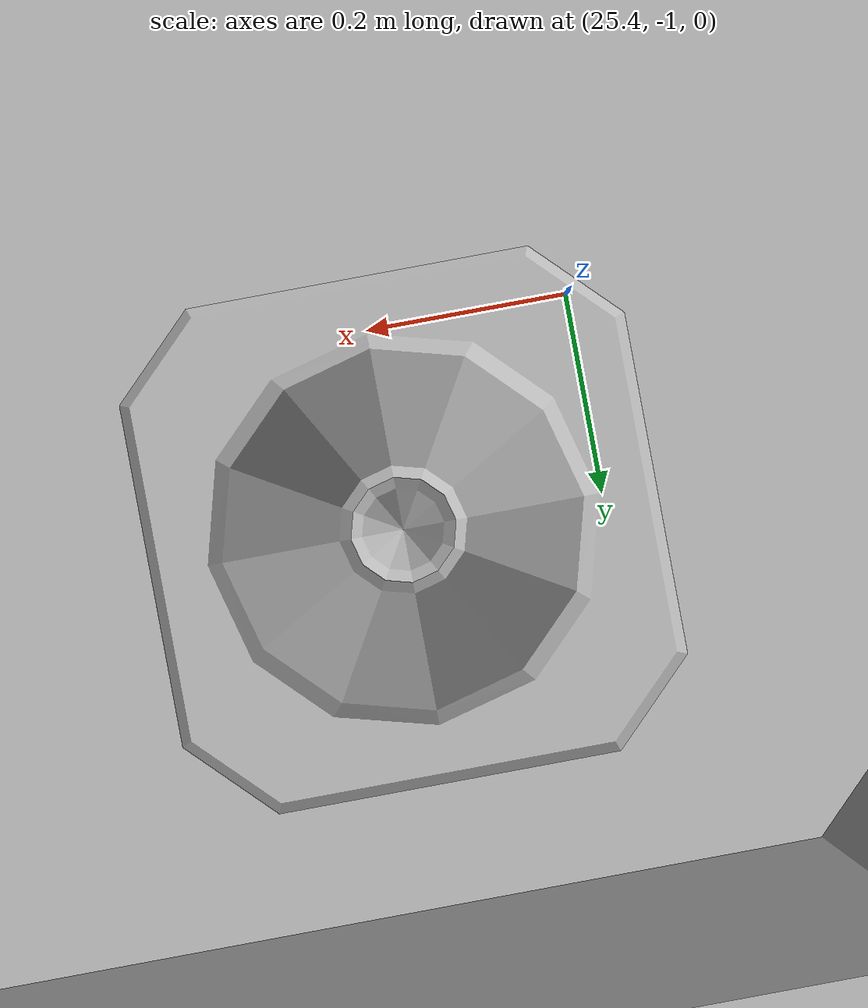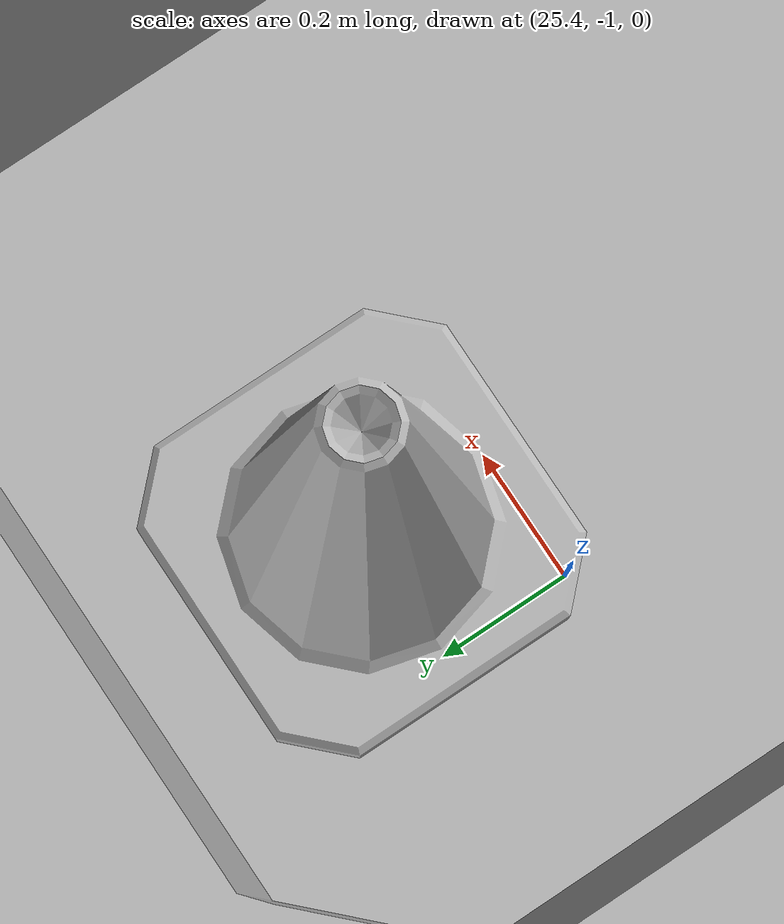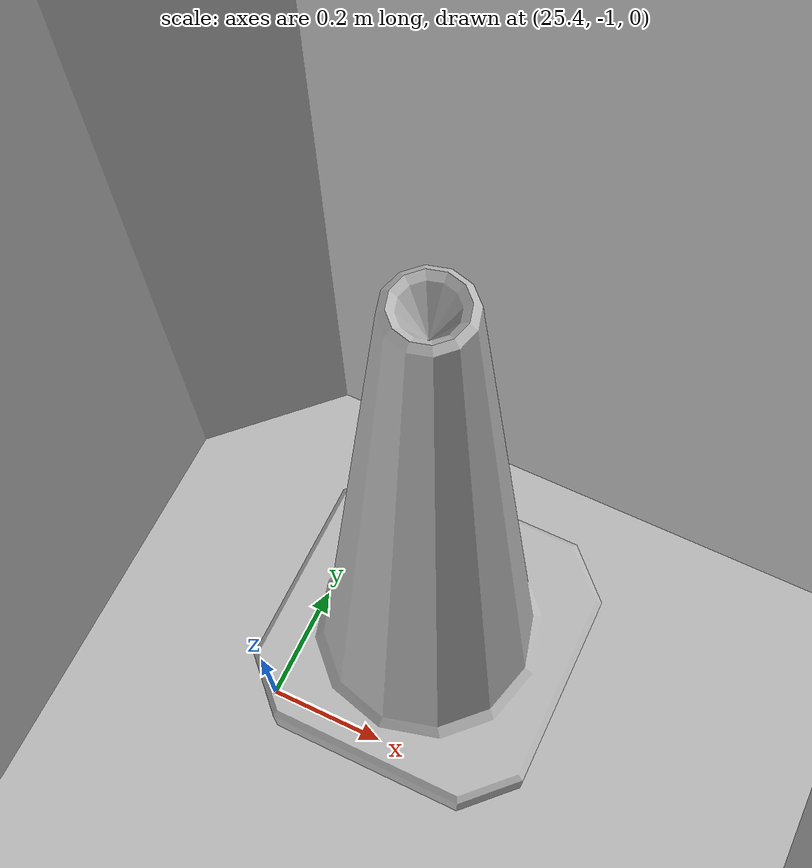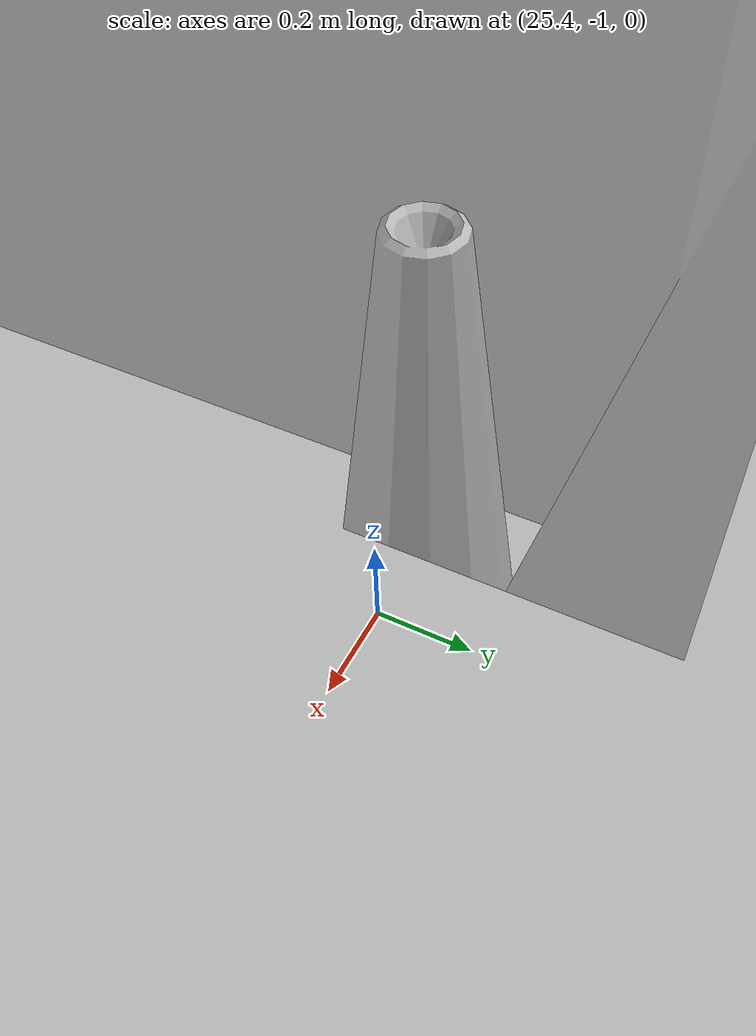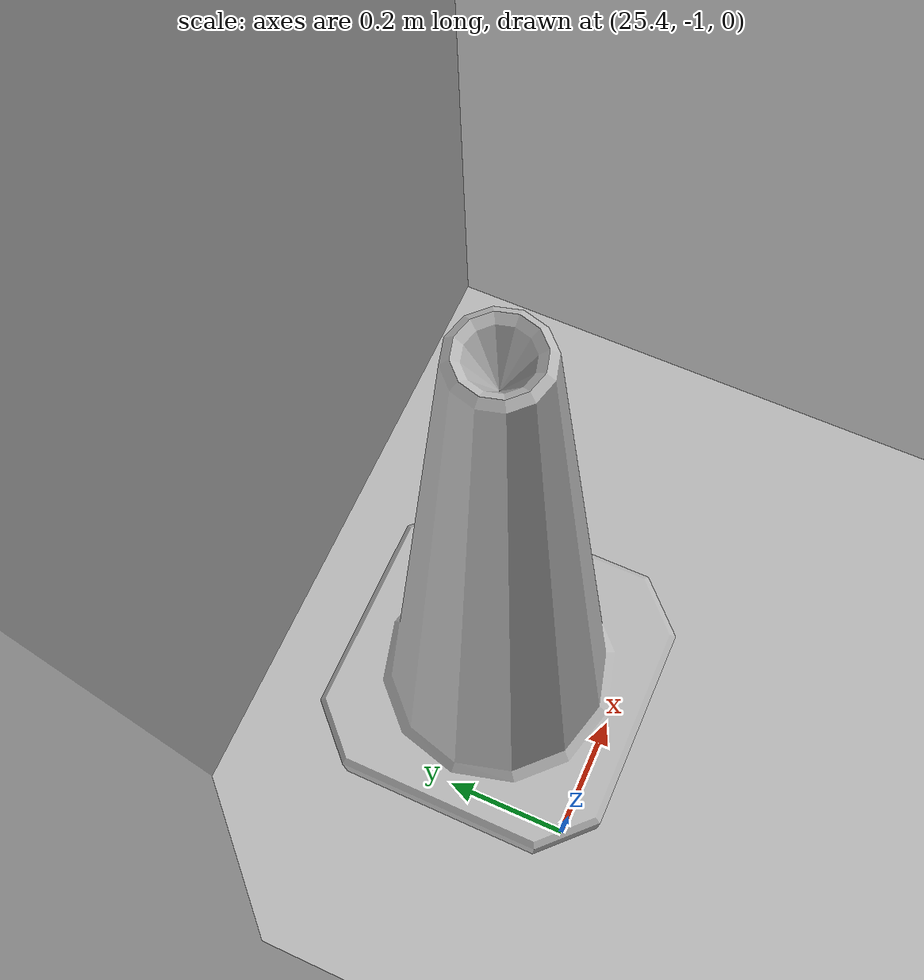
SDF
<?xml version="1.0"?>
<sdf version="1.4">
  <world name="default">
    <include>
      <uri>model://sun</uri>
    </include>

    <include>
      <uri>model://turtlebot3_maze2/mazeA</uri>
      <pose>0.1 0 0 0 0 0</pose>
    </include>

    <include>
      <uri>model://construction_cone</uri>
      <static>true</static>
      <pose>25.6 -0.8 0 0 0 0</pose>
    </include>

    <physics type="ode">
      <real_time_update_rate>1000.0</real_time_update_rate>
      <max_step_size>0.001</max_step_size>
      <real_time_factor>1</real_time_factor>
      <ode>
        <solver>
          <type>quick</type>
          <iters>150</iters>
          <precon_iters>0</precon_iters>
          <sor>1.400000</sor>
          <use_dynamic_moi_rescaling>1</use_dynamic_moi_rescaling>
        </solver>
        <constraints>
          <cfm>0.00001</cfm>
          <erp>0.2</erp>
          <contact_max_correcting_vel>2000.000000</contact_max_correcting_vel>
          <contact_surface_layer>0.01000</contact_surface_layer>
        </constraints>
      </ode>
    </physics>

  </world>
</sdf>

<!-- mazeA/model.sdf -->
<sdf version='1.5'>
  <!-- Draw Model -->
  <model name="mazeA">
    <static>true</static>
    <link name="mazeA">
      <collision name="collision">
        <geometry>
          <mesh>
            <uri>model://turtlebot3_maze2/mazeA/mazeA.stl</uri>
          </mesh>
        </geometry>
      </collision>

      <visual name="visual">
        <geometry>
          <mesh>
            <uri>model://turtlebot3_maze2/mazeA/mazeA.dae</uri>
          </mesh>
        </geometry>
      </visual>
    </link>
  </model>
</sdf>

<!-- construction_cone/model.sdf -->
<sdf version="1.5">
  <model name="Construction Cone">
    <link name="link">
      <collision name="collision">
        <geometry>
          <mesh>
            <scale>10 10 10</scale>
            <uri>file://isr-testbed/construction_cone/meshes/construction_cone.dae</uri>
          </mesh>
        </geometry>
      </collision>
      <visual name="visual">
        <geometry>
          <mesh>
            <scale>10 10 10</scale>
            <uri>file://isr-testbed/construction_cone/meshes/construction_cone.dae</uri>
          </mesh>
        </geometry>
      </visual>
    </link>
  </model>
</sdf>
